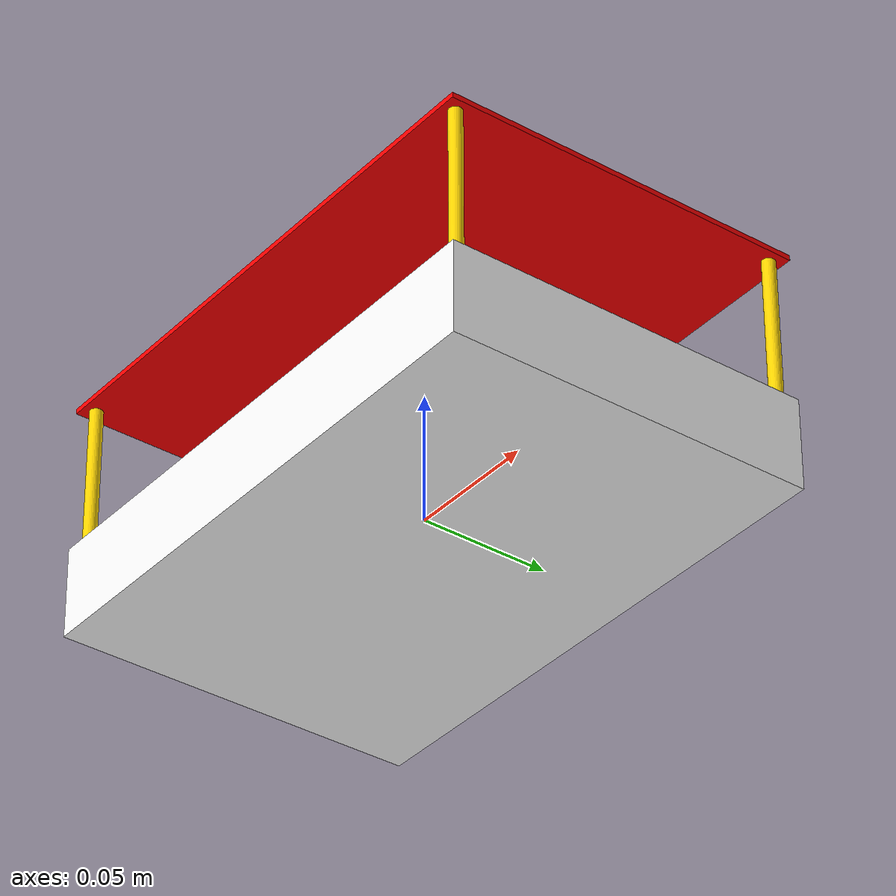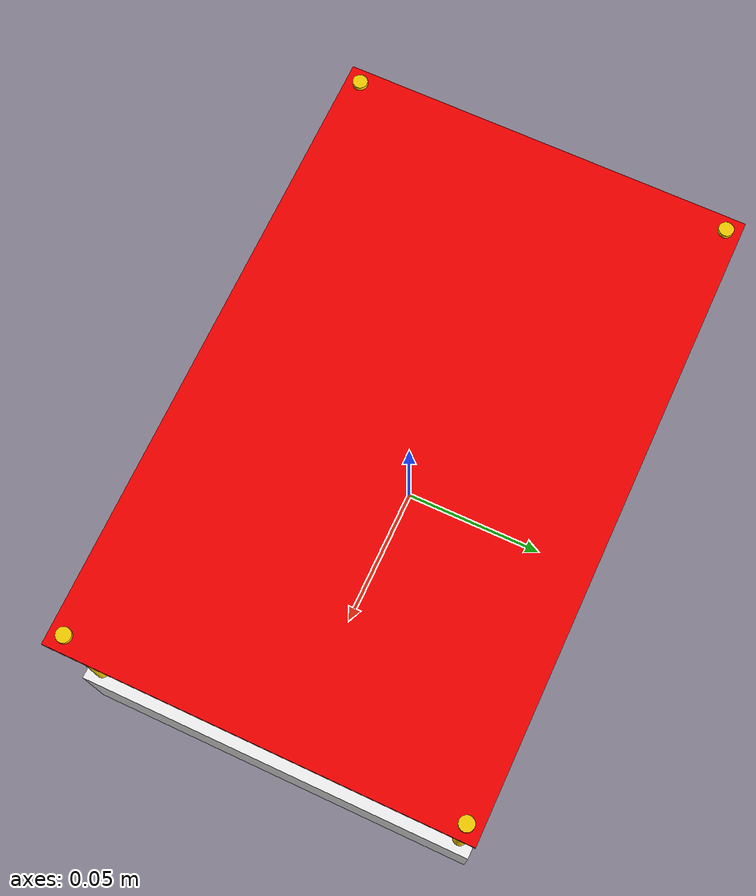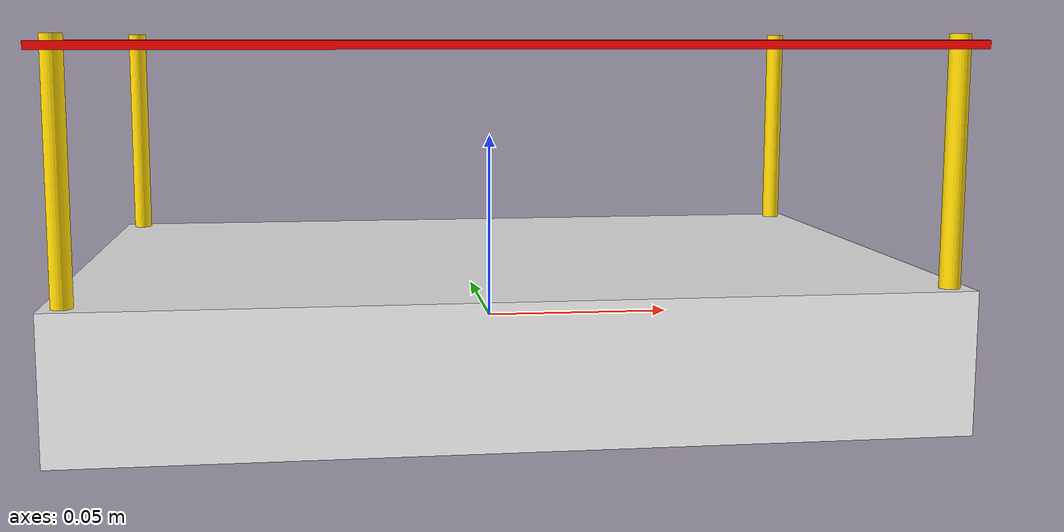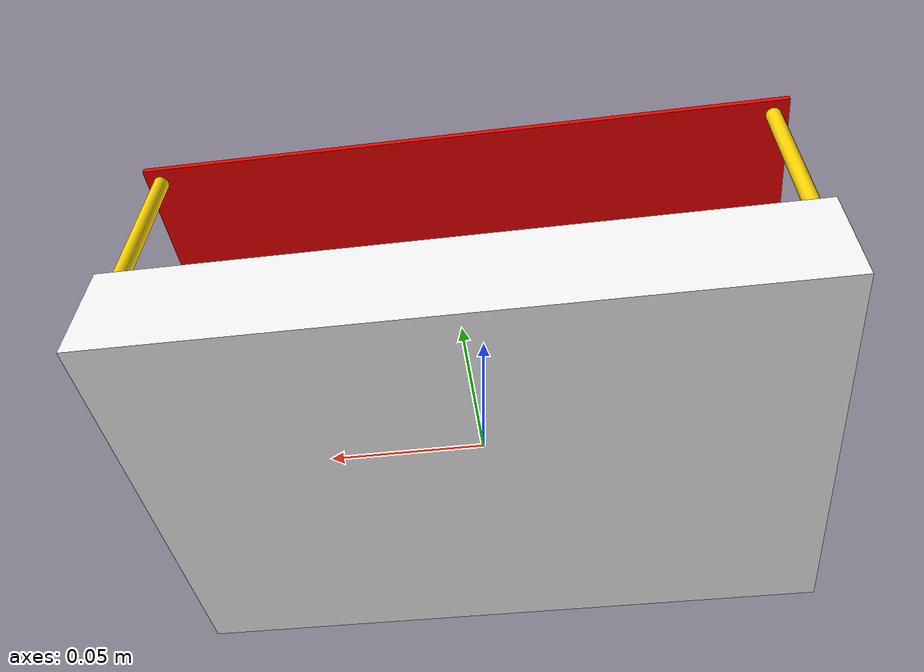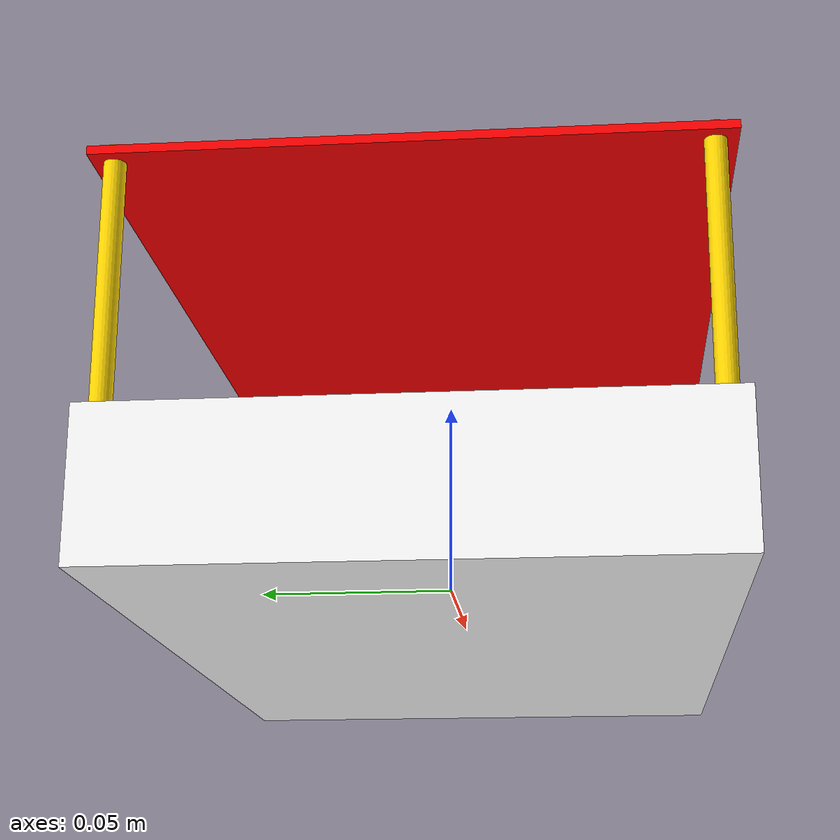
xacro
<?xml version="1.0"?>
<robot name="new_fyp_kal_robot" xmlns:xacro="http://www.ros.org/wiki/xacro">

  <!-- Define robot constants -->
  <xacro:property name="base_width" value="0.14"/>
  <xacro:property name="base_length" value="0.215"/>
  <xacro:property name="base_height" value="0.035"/>
  <xacro:property name="top_layer_height" value="0.002"/>
  <xacro:property name="standoff_radius" value="0.0025"/>
  <xacro:property name="standoff_height" value="0.06"/>
  <xacro:property name="wheel_radius" value="0.0425"/>

  <!-- Robot Base -->

  <link name="base_link">
    <visual>
      <geometry>
        <box size="${base_length} ${base_width} ${base_height}"/>
      </geometry>
      <material name="White">
        <color rgba="1.0 1.0 1.0 1.0"/>
      </material>
    </visual>
    <collision>
      <geometry>
        <box size="${base_length} ${base_width} ${base_height}"/>
      </geometry>
    </collision>
    <xacro:box_inertia m="4" w="${base_width}" d="${base_length}" h="${base_height}"/>
  </link>
  <!-- Top Layer -->
  <link name="top_layer">
    <visual>
      <geometry>
        <box size="${base_length} ${base_width} ${top_layer_height}"/>
      </geometry>
      <material name="Red">
        <color rgba="1.0 0.0 0.0 1.0"/>
      </material>
    </visual>
    <collision>
      <geometry>
        <box size="${base_length} ${base_width} ${top_layer_height}"/>
      </geometry>
    </collision>
    <xacro:box_inertia m="1" w="${base_width}" d="${base_length}" h="${top_layer_height}"/>
  </link>
  <!-- Standoffs -->
  <xacro:macro name="standoff" params="prefix x y">
    <link name="${prefix}_standoff">
      <visual>
        <origin xyz="0 0 0" rpy="0 0 0"/>
        <geometry>
          <cylinder radius="${standoff_radius}" length="${standoff_height}"/>
        </geometry>
        <material name="Gold">
          <color rgba="1 0.843 0 1.0"/>
        </material>
      </visual>
      <collision>
        <geometry>
          <cylinder radius="${standoff_radius}" length="${standoff_height}"/>
        </geometry>
      </collision>
      <xacro:cylinder_inertia m="0.005" r="${standoff_radius}" h="${standoff_height}"/>
    </link>
    <joint name="${prefix}_standoff_joint" type="fixed">
      <parent link="base_link"/>
      <child link="${prefix}_standoff"/>
      <origin xyz="${x} ${y} ${(base_height/2 + standoff_height/2)}" rpy="0 0 0"/>
    </joint>
  </xacro:macro>
  <!--Instances of standoffs-->
  <xacro:standoff prefix="front_left" x="${base_length/2 - 0.005}" y="${base_width/2 - 0.005}"/>
  <xacro:standoff prefix="front_right" x="${base_length/2 - 0.005}" y="${-base_width/2 + 0.005}"/>
  <xacro:standoff prefix="rear_left" x="${-base_length/2 + 0.005}" y="${base_width/2 - 0.005}"/>
  <xacro:standoff prefix="rear_right" x="${-base_length/2+0.005}" y="${-base_width/2+0.005}"/>
  <!-- Top Layer Joint -->
  <joint name="top_layer_joint" type="fixed">
    <parent link="base_link"/>
    <child link="top_layer"/>
    <origin xyz="0 0 ${(base_height + standoff_height - 0.02)}" rpy="0 0 0"/>
  </joint>
  <!-- Robot Footprint -->
  <link name="base_footprint"/>
  <joint name="base_joint" type="fixed">
    <parent link="base_link"/>
    <child link="base_footprint"/>
    <origin xyz="0.0 0.0 ${-wheel_radius}" rpy="0 0 0"/>
  </joint>

</robot>
